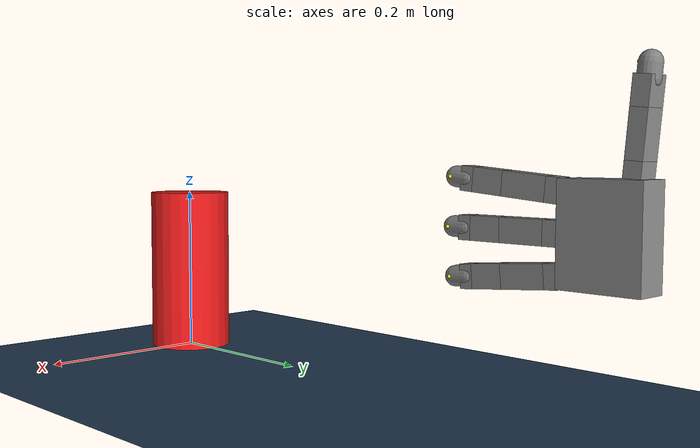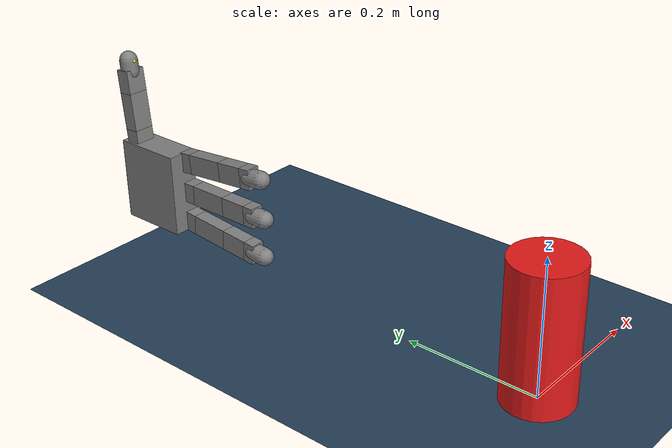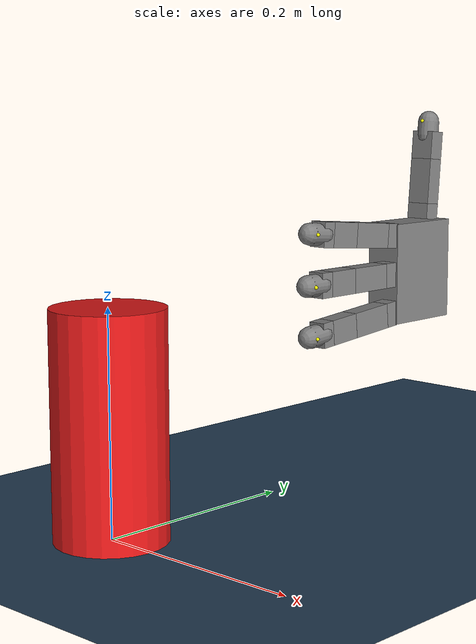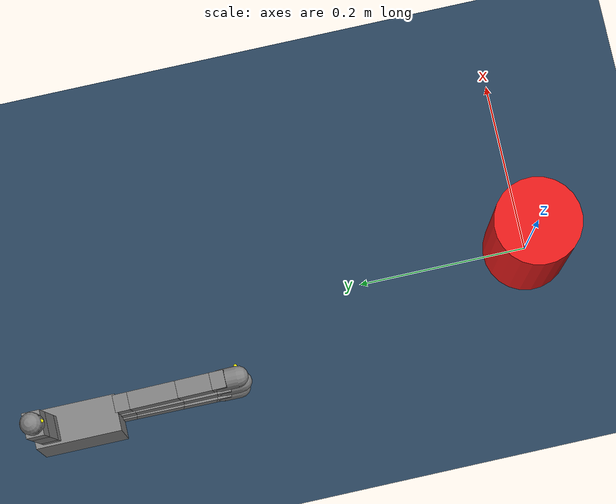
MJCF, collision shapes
<mujoco model="right_allegro_hand_scene">
  <include file="right_hand.xml"/>
  <statistic center="0 0 0" extent="0.3"/>

  <visual>
    <rgba haze="0.15 0.25 0.35 1"/>
    <quality shadowsize="8192"/>
    <global azimuth="130" elevation="-40"/>
  </visual>

  <asset>
    <texture type="skybox" builtin="gradient" rgb1="0.3 0.5 0.7" rgb2="0 0 0" width="512" height="3072"/>
    <texture type="2d" name="groundplane" builtin="checker" mark="edge" rgb1="0.2 0.3 0.4" rgb2="0.1 0.2 0.3"
      markrgb="0.8 0.8 0.8" width="300" height="300"/>
    <material name="groundplane" texture="groundplane" texuniform="true" texrepeat="5 5" reflectance="0.2"/>
  </asset>

  <option cone="elliptic"/>

  <worldbody>
    <light pos="0 0 1"/>
    <light pos="0.3 0 1.5" dir="0 0 -1" directional="true"/>
    <geom name="floor"  size="0 0 0.1" type="plane" material="groundplane"/>

    <!-- Positioning the cylinder over the hand -->
    <body name="cylinder_object" pos="0 0 0.1" quat="0.9962 0 0 0.0872">
         <freejoint/>
         <geom type="cylinder" size="0.05 0.1" rgba="0.9 0.1 0.1 1" density="20" friction="5.0 0.6 0.6" />
    </body>
  </worldbody>

</mujoco>

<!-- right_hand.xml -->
<mujoco model="allegro_right">

  <compiler angle="radian" meshdir="assets" autolimits="true"/>

  <default>
    <default class="allegro_right">
      <joint axis="0 1 0" damping=".1"/>
      <position kp="1"/>
      <geom density="800"/>

      <default class="visual">
        <geom type="mesh" contype="0" conaffinity="0" group="2" material="black"/>
        <default class="palm_visual">
          <geom mesh="base_link"/>
        </default>
        <default class="base_visual">
          <geom mesh="link_0.0"/>
        </default>
        <default class="proximal_visual">
          <geom mesh="link_1.0"/>
        </default>
        <default class="medial_visual">
          <geom mesh="link_2.0"/>
        </default>
        <default class="distal_visual">
          <geom mesh="link_3.0"/>
        </default>
        <default class="fingertip_visual">
          <geom pos="0 0 0.0267" material="white" mesh="link_3.0_tip"/>
        </default>
        <default class="thumbtip_visual">
          <geom pos="0 0 0.0423" material="white" mesh="link_15.0_tip"/>
        </default>
      </default>

      <default class="collision">
        <geom group="3" type="box" mass="0"/>
        <default class="palm_collision">
          <geom size="0.0204 0.0565 0.0475" pos="-0.0093 0 -0.0475"/>
        </default>
        <default class="base_collision">
          <geom size="0.0098 0.01375 0.0082" pos="0 0 0.0082"/>
          <default class="thumb_base_collision">
            <geom size="0.0179 0.017 0.02275" pos="-0.0179 0.009 0.0145"/>
          </default>
        </default>
        <default class="proximal_collision">
          <geom size="0.0098 0.01375 0.027" pos="0 0 0.027"/>
          <default class="thumb_proximal_collision">
            <geom size="0.0098 0.01375 0.00885" pos="0 0 0.00885"/>
          </default>
        </default>
        <default class="medial_collision">
          <geom size="0.0098 0.01375 0.0192" pos="0 0 0.0192"/>
          <default class="thumb_medial_collision">
            <geom size="0.0098 0.01375 0.0257" pos="0 0 0.0257"/>
          </default>
        </default>
        <default class="distal_collision">
          <geom size="0.0098 0.01375 0.008" pos="0 0 0.008"/>
          <default class="thumb_distal_collision">
            <geom size="0.0098 0.01375 0.0157" pos="0 0 0.0157"/>
          </default>
        </default>
        <default class="fingertip_collision">
          <geom type="capsule" size="0.012 0.01" pos="0 0 0.019"/>
          <default class="thumbtip_collision">
            <geom type="capsule" size="0.012 0.008" pos="0 0 0.035"/>
          </default>
        </default>
      </default>

      <default class="rootx_c">
        <joint axis="1 0 0" range="-20.0 20.0"/>
        <position ctrlrange="-2.0 2.0" kp="200"/>
      </default>
      <default class="rooty_c">
        <joint axis="0 1 0" range="-20.0 20."/>
        <position ctrlrange="-2.0 2.0" kp="200"/>
      </default>
      <default class="rootz_c">
        <joint axis="0 0 1" range="-20.0 20.0"/>
        <position ctrlrange="-2.0 2.0" kp="200"/>
      </default>
      <default class="base">
        <joint axis="0 0 1" range="-0.47 0.47"/>
        <position ctrlrange="-0.47 0.47"/>
      </default>
      <default class="proximal">
        <joint range="-0.196 1.61"/>
        <position ctrlrange="-0.196 1.61"/>
      </default>
      <default class="medial">
        <joint range="-0.174 1.709"/>
        <position ctrlrange="-0.174 1.709"/>
      </default>
      <default class="distal">
        <joint range="-0.227 1.618"/>
        <position ctrlrange="-0.227 1.618"/>
      </default>
      <default class="thumb_base">
        <joint axis="-1 0 0" range="0.263 1.396"/>
        <position ctrlrange="0.263 1.396"/>
      </default>
      <default class="thumb_proximal">
        <joint axis="0 0 1" range="-0.105 1.163"/>
        <position ctrlrange="-0.105 1.163"/>
      </default>
      <default class="thumb_medial">
        <joint range="-0.189 1.644"/>
        <position ctrlrange="-0.189 1.644"/>
      </default>
      <default class="thumb_distal">
        <joint range="-0.162 1.719"/>
        <position ctrlrange="-0.162 1.719"/>
      </default>
    </default>
  </default>

  <asset>
    <material name="black" rgba="0.2 0.2 0.2 1"/>
    <material name="white" rgba="0.9 0.9 0.9 1"/>

    <mesh file="base_link.stl"/>
    <mesh file="link_0.0.stl"/>
    <mesh file="link_1.0.stl"/>
    <mesh file="link_2.0.stl"/>
    <mesh file="link_3.0.stl"/>
    <mesh file="link_3.0_tip.stl"/>
    <mesh file="link_12.0_right.stl"/>
    <mesh file="link_13.0.stl"/>
    <mesh file="link_14.0.stl"/>
    <mesh file="link_15.0.stl"/>
    <mesh file="link_15.0_tip.stl"/>
  </asset>

  <worldbody>
    <body name="rhand" pos = "0 0.5 0.17" quat="1 0 0 0" childclass="allegro_right">
    <joint name = "rootx" type = "slide" damping = "200" pos = "0 0 0" axis = "1 0 0" range = "-20 20"/>
    <joint name = "rooty" type = "slide" damping = "200" pos = "0 0 0" axis = "0 1 0" range = "-20 20"/>
    <joint name = "rootz" type = "slide" damping = "200" pos = "0 0 0" axis = "0 0 1" range = "-20 20"/>
      <body name="palm" pos = "-0.1 0 0" quat="0.5 0.5 0 0" childclass="allegro_right">
        <geom class="palm_visual" mesh="base_link"/>
        <geom class="palm_collision"/>
        <!-- First finger -->
        <body name="ff_base" pos="0 0.0435 -0.001542" quat="0.999048 -0.0436194 0 0">
          <joint name="ffj0" class="base"/>
          <geom class="base_visual"/>
          <geom class="base_collision"/>
          <body name="ff_proximal" pos="0 0 0.0164">
            <joint name="ffj1" class="proximal"/>
            <geom class="proximal_visual"/>
            <geom class="proximal_collision"/>
            <body name="ff_medial" pos="0 0 0.054">
              <joint name="ffj2" class="medial"/>
              <geom class="medial_visual"/>
              <geom class="medial_collision"/>
              <body name="ff_distal" pos="0 0 0.0384">
                <joint name="ffj3" class="distal"/>
                <geom class="distal_visual"/>
                <geom class="distal_collision"/>
                <body name="ff_tip">
                  <geom class="fingertip_visual"/>
                  <geom class="fingertip_collision"/>
                  <site name="ff_contact" pos="0.012 0 0.029" type="sphere" size="0.002" rgba="1 1 0 1"/>
                </body>
              </body>
            </body>
          </body>
        </body>
        <!-- Middle finger -->
        <body name="mf_base" pos="0 0 0.0007">
          <joint name="mfj0" class="base"/>
          <geom class="base_visual"/>
          <geom class="base_collision"/>
          <body name="mf_proximal" pos="0 0 0.0164">
            <joint name="mfj1" class="proximal"/>
            <geom class="proximal_visual"/>
            <geom class="proximal_collision"/>
            <body name="mf_medial" pos="0 0 0.054">
              <joint name="mfj2" class="medial"/>
              <geom class="medial_visual"/>
              <geom class="medial_collision"/>
              <body name="mf_distal" pos="0 0 0.0384">
                <joint name="mfj3" class="distal"/>
                <geom class="distal_visual"/>
                <geom class="distal_collision"/>
                <body name="mf_tip">
                  <geom class="fingertip_visual"/>
                  <geom class="fingertip_collision"/>
                  <site name="mf_contact" pos="0.012 0 0.029" type="sphere" size="0.002" rgba="1 1 0 1"/>
                </body>
              </body>
            </body>
          </body>
        </body>

        <!-- Ring finger -->
        <body name="rf_base" pos="0 -0.0435 -0.001542" quat="0.999048 0.0436194 0 0">
          <joint name="rfj0" class="base"/>
          <geom class="base_visual"/>
          <geom class="base_collision"/>
          <body name="rf_proximal" pos="0 0 0.0164">
            <joint name="rfj1" class="proximal"/>
            <geom class="proximal_visual"/>
            <geom class="proximal_collision"/>
            <body name="rf_medial" pos="0 0 0.054">
              <joint name="rfj2" class="medial"/>
              <geom class="medial_visual"/>
              <geom class="medial_collision"/>
              <body name="rf_distal" pos="0 0 0.0384">
                <joint name="rfj3" class="distal"/>
                <geom class="distal_visual"/>
                <geom class="distal_collision"/>
                <body name="rf_tip">
                  <geom class="fingertip_visual"/>
                  <geom class="fingertip_collision"/>
                  <site name="rf_contact" pos="0.012 0 0.029" type="sphere" size="0.002" rgba="1 1 0 1"/>
                </body>
              </body>
            </body>
          </body>
        </body>
        <!-- Thumb -->
        <body name="th_base" pos="-0.0182 0.019333 -0.045987" quat="0.477714 -0.521334 -0.521334 -0.477714">
          <joint name="thj0" class="thumb_base" />
          <geom class="visual" mesh="link_12.0_right"/>
          <geom class="thumb_base_collision"/>
          <body name="th_proximal" pos="-0.027 0.005 0.0399">
            <joint name="thj1" class="thumb_proximal"/>
            <geom class="visual" mesh="link_13.0"/>
            <geom class="thumb_proximal_collision"/>
            <body name="th_medial" pos="0 0 0.0177">
              <joint name="thj2" class="thumb_medial"/>
              <geom class="visual" mesh="link_14.0"/>
              <geom class="thumb_medial_collision"/>
              <body name="th_distal" pos="0 0 0.0514">
                <joint name="thj3" class="thumb_distal"/>
                <geom class="visual" mesh="link_15.0"/>
                <geom class="thumb_distal_collision"/>
                <body name="th_tip">
                  <geom class="thumbtip_visual"/>
                  <geom class="thumbtip_collision"/>
                  <site name="th_contact" pos="0.012 0 0.043" type="sphere" size="0.002" rgba="1 1 0 1"/>
                </body>
              </body>
            </body>
          </body>
        </body>
      </body>
    </body>
  </worldbody>

  <contact>
    <exclude body1="palm" body2="ff_base"/>
    <exclude body1="palm" body2="mf_base"/>
    <exclude body1="palm" body2="rf_base"/>
    <exclude body1="palm" body2="th_base"/>
    <exclude body1="palm" body2="th_proximal"/>
  </contact>

  <sensor>
    <force name="ff_force" site="ff_contact"/>
    <force name="mf_force" site="mf_contact"/>
    <force name="rf_force" site="rf_contact"/>
    <force name="th_force" site="th_contact"/>
  </sensor>

  <actuator>
    <position name="rootx" joint="rootx" class="rootx_c"/>
    <position name="rooty" joint="rooty" class="rooty_c"/>
    <position name="rootz" joint="rootz" class="rootz_c"/>
    <position name="ffa0" joint="ffj0" class="base"/>
    <position name="ffa1" joint="ffj1" class="proximal"/>
    <position name="ffa2" joint="ffj2" class="medial"/>
    <position name="ffa3" joint="ffj3" class="distal"/>
    <position name="mfa0" joint="mfj0" class="base"/>
    <position name="mfa1" joint="mfj1" class="proximal"/>
    <position name="mfa2" joint="mfj2" class="medial"/>
    <position name="mfa3" joint="mfj3" class="distal"/>
    <position name="rfa0" joint="rfj0" class="base"/>
    <position name="rfa1" joint="rfj1" class="proximal"/>
    <position name="rfa2" joint="rfj2" class="medial"/>
    <position name="rfa3" joint="rfj3" class="distal"/>
    <position name="tha0" joint="thj0" class="thumb_base"/>
    <position name="tha1" joint="thj1" class="thumb_proximal"/>
    <position name="tha2" joint="thj2" class="thumb_medial"/>
    <position name="tha3" joint="thj3" class="thumb_distal"/>
  </actuator>
</mujoco>
